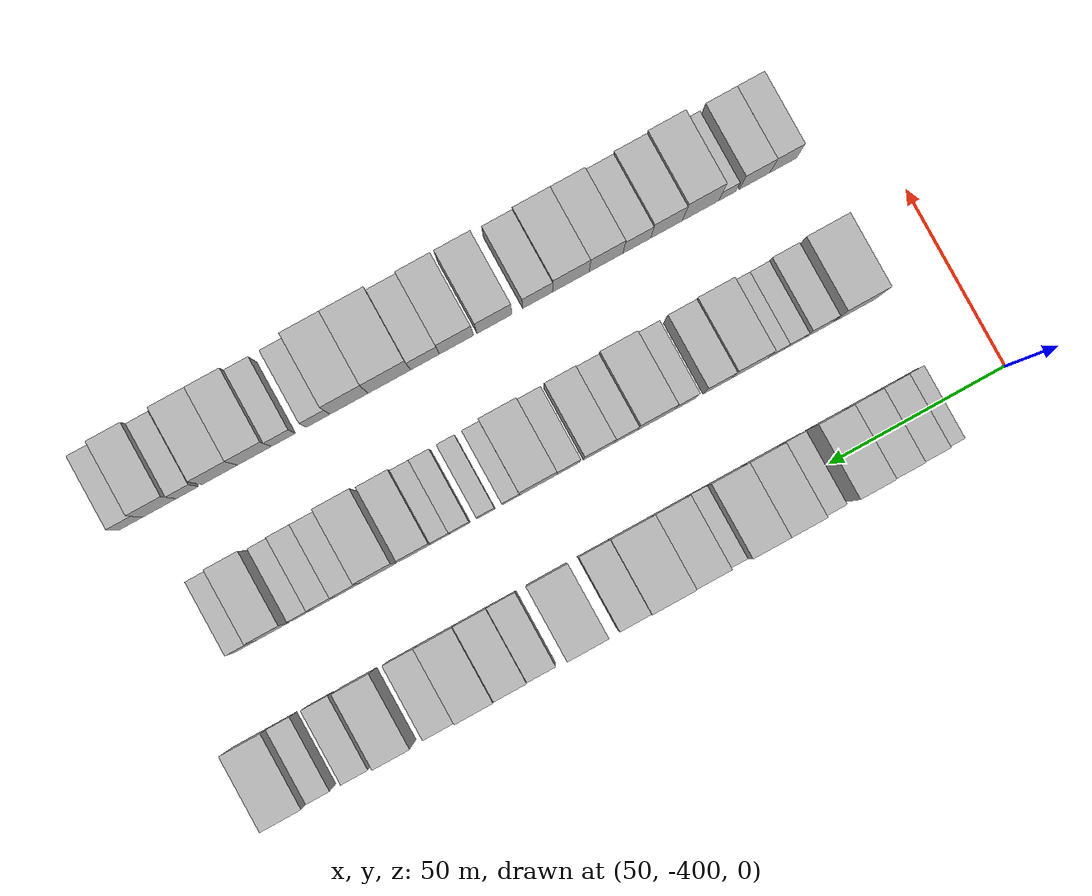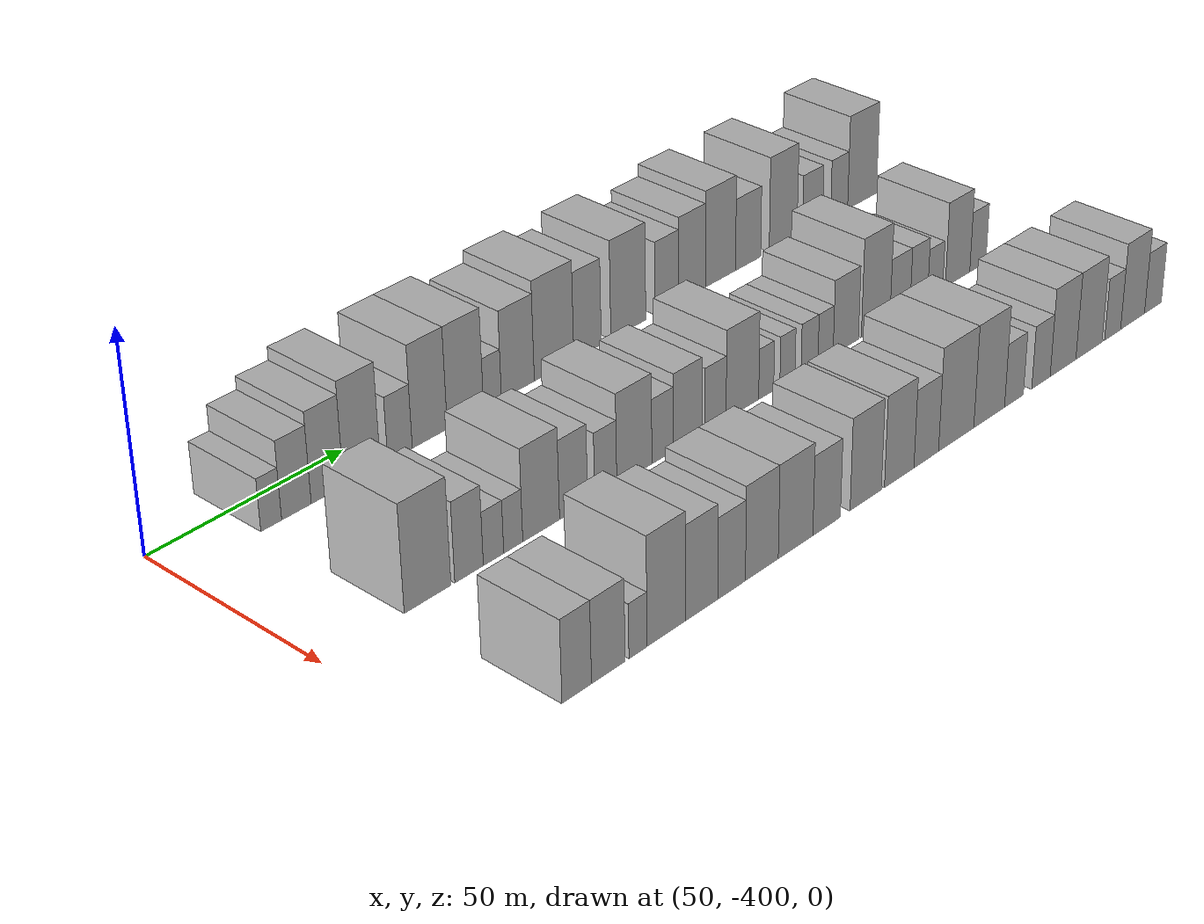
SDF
<sdf version="1.6">
 <world name="default">
  <model name="building_1">
   <static>1</static>
   <pose>50.0000 -377.3886 0 0.000000 0.000000 0.000000</pose>
   <link name="link">
    <pose>0 0 6.00 0 0 0</pose>
    <collision name="collision"><geometry><box><size>20.0000 5.2227 12.0000</size></box></geometry></collision>
    <visual name="visual">
     <cast_shadows>0</cast_shadows>
     <geometry><box><size>20.0000 5.2227 12.0000</size></box></geometry>
     <material>
      <script>
       <uri>model://HANNAS_wall/materials/scripts</uri>
       <uri>model://HANNAS_wall/materials/textures</uri>
       <name>vrc/HANNAS_wall</name>
      </script>
     </material>
    </visual>
   </link>
  </model>
  <model name="building_2">
   <static>1</static>
   <pose>50.0000 -371.0098 0 0.000000 0.000000 0.000000</pose>
   <link name="link">
    <pose>0 0 9.00 0 0 0</pose>
    <collision name="collision"><geometry><box><size>20.0000 7.5350 18.0000</size></box></geometry></collision>
    <visual name="visual">
     <cast_shadows>0</cast_shadows>
     <geometry><box><size>20.0000 7.5350 18.0000</size></box></geometry>
     <material>
      <script>
       <uri>model://HANNAS_wall/materials/scripts</uri>
       <uri>model://HANNAS_wall/materials/textures</uri>
       <name>vrc/HANNAS_wall</name>
      </script>
     </material>
    </visual>
   </link>
  </model>
  <model name="building_3">
   <static>1</static>
   <pose>50.0000 -363.0318 0 0.000000 0.000000 0.000000</pose>
   <link name="link">
    <pose>0 0 10.50 0 0 0</pose>
    <collision name="collision"><geometry><box><size>20.0000 8.4210 21.0000</size></box></geometry></collision>
    <visual name="visual">
     <cast_shadows>0</cast_shadows>
     <geometry><box><size>20.0000 8.4210 21.0000</size></box></geometry>
     <material>
      <script>
       <uri>model://HANNAS_wall/materials/scripts</uri>
       <uri>model://HANNAS_wall/materials/textures</uri>
       <name>vrc/HANNAS_wall</name>
      </script>
     </material>
    </visual>
   </link>
  </model>
  <model name="building_4">
   <static>1</static>
   <pose>50.0000 -353.9402 0 0.000000 0.000000 0.000000</pose>
   <link name="link">
    <pose>0 0 12.00 0 0 0</pose>
    <collision name="collision"><geometry><box><size>20.0000 9.7621 24.0000</size></box></geometry></collision>
    <visual name="visual">
     <cast_shadows>0</cast_shadows>
     <geometry><box><size>20.0000 9.7621 24.0000</size></box></geometry>
     <material>
      <script>
       <uri>model://HANNAS_wall/materials/scripts</uri>
       <uri>model://HANNAS_wall/materials/textures</uri>
       <name>vrc/HANNAS_wall</name>
      </script>
     </material>
    </visual>
   </link>
  </model>
  <model name="building_5">
   <static>1</static>
   <pose>50.0000 -343.7180 0 0.000000 0.000000 0.000000</pose>
   <link name="link">
    <pose>0 0 7.50 0 0 0</pose>
    <collision name="collision"><geometry><box><size>20.0000 6.6824 15.0000</size></box></geometry></collision>
    <visual name="visual">
     <cast_shadows>0</cast_shadows>
     <geometry><box><size>20.0000 6.6824 15.0000</size></box></geometry>
     <material>
      <script>
       <uri>model://HANNAS_wall/materials/scripts</uri>
       <uri>model://HANNAS_wall/materials/textures</uri>
       <name>vrc/HANNAS_wall</name>
      </script>
     </material>
    </visual>
   </link>
  </model>
  <model name="building_6">
   <static>1</static>
   <pose>50.0000 -335.5096 0 0.000000 0.000000 0.000000</pose>
   <link name="link">
    <pose>0 0 12.00 0 0 0</pose>
    <collision name="collision"><geometry><box><size>20.0000 9.7343 24.0000</size></box></geometry></collision>
    <visual name="visual">
     <cast_shadows>0</cast_shadows>
     <geometry><box><size>20.0000 9.7343 24.0000</size></box></geometry>
     <material>
      <script>
       <uri>model://HANNAS_wall/materials/scripts</uri>
       <uri>model://HANNAS_wall/materials/textures</uri>
       <name>vrc/HANNAS_wall</name>
      </script>
     </material>
    </visual>
   </link>
  </model>
  <model name="building_7">
   <static>1</static>
   <pose>50.0000 -325.4724 0 0.000000 0.000000 0.000000</pose>
   <link name="link">
    <pose>0 0 12.00 0 0 0</pose>
    <collision name="collision"><geometry><box><size>20.0000 10.3402 24.0000</size></box></geometry></collision>
    <visual name="visual">
     <cast_shadows>0</cast_shadows>
     <geometry><box><size>20.0000 10.3402 24.0000</size></box></geometry>
     <material>
      <script>
       <uri>model://HANNAS_wall/materials/scripts</uri>
       <uri>model://HANNAS_wall/materials/textures</uri>
       <name>vrc/HANNAS_wall</name>
      </script>
     </material>
    </visual>
   </link>
  </model>
  <model name="building_8">
   <static>1</static>
   <pose>50.0000 -317.7057 0 0.000000 0.000000 0.000000</pose>
   <link name="link">
    <pose>0 0 6.00 0 0 0</pose>
    <collision name="collision"><geometry><box><size>20.0000 5.1933 12.0000</size></box></geometry></collision>
    <visual name="visual">
     <cast_shadows>0</cast_shadows>
     <geometry><box><size>20.0000 5.1933 12.0000</size></box></geometry>
     <material>
      <script>
       <uri>model://HANNAS_wall/materials/scripts</uri>
       <uri>model://HANNAS_wall/materials/textures</uri>
       <name>vrc/HANNAS_wall</name>
      </script>
     </material>
    </visual>
   </link>
  </model>
  <model name="building_9">
   <static>1</static>
   <pose>50.0000 -310.2537 0 0.000000 0.000000 0.000000</pose>
   <link name="link">
    <pose>0 0 10.50 0 0 0</pose>
    <collision name="collision"><geometry><box><size>20.0000 9.7105 21.0000</size></box></geometry></collision>
    <visual name="visual">
     <cast_shadows>0</cast_shadows>
     <geometry><box><size>20.0000 9.7105 21.0000</size></box></geometry>
     <material>
      <script>
       <uri>model://HANNAS_wall/materials/scripts</uri>
       <uri>model://HANNAS_wall/materials/textures</uri>
       <name>vrc/HANNAS_wall</name>
      </script>
     </material>
    </visual>
   </link>
  </model>
  <model name="building_10">
   <static>1</static>
   <pose>50.0000 -299.4055 0 0.000000 0.000000 0.000000</pose>
   <link name="link">
    <pose>0 0 12.00 0 0 0</pose>
    <collision name="collision"><geometry><box><size>20.0000 11.9860 24.0000</size></box></geometry></collision>
    <visual name="visual">
     <cast_shadows>0</cast_shadows>
     <geometry><box><size>20.0000 11.9860 24.0000</size></box></geometry>
     <material>
      <script>
       <uri>model://HANNAS_wall/materials/scripts</uri>
       <uri>model://HANNAS_wall/materials/textures</uri>
       <name>vrc/HANNAS_wall</name>
      </script>
     </material>
    </visual>
   </link>
  </model>
  <model name="building_11">
   <static>1</static>
   <pose>50.0000 -289.1540 0 0.000000 0.000000 0.000000</pose>
   <link name="link">
    <pose>0 0 10.50 0 0 0</pose>
    <collision name="collision"><geometry><box><size>20.0000 8.5169 21.0000</size></box></geometry></collision>
    <visual name="visual">
     <cast_shadows>0</cast_shadows>
     <geometry><box><size>20.0000 8.5169 21.0000</size></box></geometry>
     <material>
      <script>
       <uri>model://HANNAS_wall/materials/scripts</uri>
       <uri>model://HANNAS_wall/materials/textures</uri>
       <name>vrc/HANNAS_wall</name>
      </script>
     </material>
    </visual>
   </link>
  </model>
  <model name="building_12">
   <static>1</static>
   <pose>50.0000 -276.3157 0 0.000000 0.000000 0.000000</pose>
   <link name="link">
    <pose>0 0 12.00 0 0 0</pose>
    <collision name="collision"><geometry><box><size>20.0000 11.1597 24.0000</size></box></geometry></collision>
    <visual name="visual">
     <cast_shadows>0</cast_shadows>
     <geometry><box><size>20.0000 11.1597 24.0000</size></box></geometry>
     <material>
      <script>
       <uri>model://HANNAS_wall/materials/scripts</uri>
       <uri>model://HANNAS_wall/materials/textures</uri>
       <name>vrc/HANNAS_wall</name>
      </script>
     </material>
    </visual>
   </link>
  </model>
  <model name="building_13">
   <static>1</static>
   <pose>50.0000 -263.8303 0 0.000000 0.000000 0.000000</pose>
   <link name="link">
    <pose>0 0 9.00 0 0 0</pose>
    <collision name="collision"><geometry><box><size>20.0000 7.8110 18.0000</size></box></geometry></collision>
    <visual name="visual">
     <cast_shadows>0</cast_shadows>
     <geometry><box><size>20.0000 7.8110 18.0000</size></box></geometry>
     <material>
      <script>
       <uri>model://HANNAS_wall/materials/scripts</uri>
       <uri>model://HANNAS_wall/materials/textures</uri>
       <name>vrc/HANNAS_wall</name>
      </script>
     </material>
    </visual>
   </link>
  </model>
  <model name="building_14">
   <static>1</static>
   <pose>50.0000 -255.4769 0 0.000000 0.000000 0.000000</pose>
   <link name="link">
    <pose>0 0 10.50 0 0 0</pose>
    <collision name="collision"><geometry><box><size>20.0000 8.8958 21.0000</size></box></geometry></collision>
    <visual name="visual">
     <cast_shadows>0</cast_shadows>
     <geometry><box><size>20.0000 8.8958 21.0000</size></box></geometry>
     <material>
      <script>
       <uri>model://HANNAS_wall/materials/scripts</uri>
       <uri>model://HANNAS_wall/materials/textures</uri>
       <name>vrc/HANNAS_wall</name>
      </script>
     </material>
    </visual>
   </link>
  </model>
  <model name="building_15">
   <static>1</static>
   <pose>50.0000 -245.8537 0 0.000000 0.000000 0.000000</pose>
   <link name="link">
    <pose>0 0 12.00 0 0 0</pose>
    <collision name="collision"><geometry><box><size>20.0000 10.3506 24.0000</size></box></geometry></collision>
    <visual name="visual">
     <cast_shadows>0</cast_shadows>
     <geometry><box><size>20.0000 10.3506 24.0000</size></box></geometry>
     <material>
      <script>
       <uri>model://HANNAS_wall/materials/scripts</uri>
       <uri>model://HANNAS_wall/materials/textures</uri>
       <name>vrc/HANNAS_wall</name>
      </script>
     </material>
    </visual>
   </link>
  </model>
  <model name="building_16">
   <static>1</static>
   <pose>50.0000 -236.2907 0 0.000000 0.000000 0.000000</pose>
   <link name="link">
    <pose>0 0 9.00 0 0 0</pose>
    <collision name="collision"><geometry><box><size>20.0000 8.7754 18.0000</size></box></geometry></collision>
    <visual name="visual">
     <cast_shadows>0</cast_shadows>
     <geometry><box><size>20.0000 8.7754 18.0000</size></box></geometry>
     <material>
      <script>
       <uri>model://HANNAS_wall/materials/scripts</uri>
       <uri>model://HANNAS_wall/materials/textures</uri>
       <name>vrc/HANNAS_wall</name>
      </script>
     </material>
    </visual>
   </link>
  </model>
  <model name="building_17">
   <static>1</static>
   <pose>50.0000 -223.9286 0 0.000000 0.000000 0.000000</pose>
   <link name="link">
    <pose>0 0 12.00 0 0 0</pose>
    <collision name="collision"><geometry><box><size>20.0000 9.9487 24.0000</size></box></geometry></collision>
    <visual name="visual">
     <cast_shadows>0</cast_shadows>
     <geometry><box><size>20.0000 9.9487 24.0000</size></box></geometry>
     <material>
      <script>
       <uri>model://HANNAS_wall/materials/scripts</uri>
       <uri>model://HANNAS_wall/materials/textures</uri>
       <name>vrc/HANNAS_wall</name>
      </script>
     </material>
    </visual>
   </link>
  </model>
  <model name="building_18">
   <static>1</static>
   <pose>50.0000 -213.2876 0 0.000000 0.000000 0.000000</pose>
   <link name="link">
    <pose>0 0 7.50 0 0 0</pose>
    <collision name="collision"><geometry><box><size>20.0000 7.3333 15.0000</size></box></geometry></collision>
    <visual name="visual">
     <cast_shadows>0</cast_shadows>
     <geometry><box><size>20.0000 7.3333 15.0000</size></box></geometry>
     <material>
      <script>
       <uri>model://HANNAS_wall/materials/scripts</uri>
       <uri>model://HANNAS_wall/materials/textures</uri>
       <name>vrc/HANNAS_wall</name>
      </script>
     </material>
    </visual>
   </link>
  </model>
  <model name="building_19">
   <static>1</static>
   <pose>50.0000 -203.4211 0 0.000000 0.000000 0.000000</pose>
   <link name="link">
    <pose>0 0 7.50 0 0 0</pose>
    <collision name="collision"><geometry><box><size>20.0000 6.3996 15.0000</size></box></geometry></collision>
    <visual name="visual">
     <cast_shadows>0</cast_shadows>
     <geometry><box><size>20.0000 6.3996 15.0000</size></box></geometry>
     <material>
      <script>
       <uri>model://HANNAS_wall/materials/scripts</uri>
       <uri>model://HANNAS_wall/materials/textures</uri>
       <name>vrc/HANNAS_wall</name>
      </script>
     </material>
    </visual>
   </link>
  </model>
  <model name="building_20">
   <static>1</static>
   <pose>50.0000 -194.7316 0 0.000000 0.000000 0.000000</pose>
   <link name="link">
    <pose>0 0 12.00 0 0 0</pose>
    <collision name="collision"><geometry><box><size>20.0000 10.9794 24.0000</size></box></geometry></collision>
    <visual name="visual">
     <cast_shadows>0</cast_shadows>
     <geometry><box><size>20.0000 10.9794 24.0000</size></box></geometry>
     <material>
      <script>
       <uri>model://HANNAS_wall/materials/scripts</uri>
       <uri>model://HANNAS_wall/materials/textures</uri>
       <name>vrc/HANNAS_wall</name>
      </script>
     </material>
    </visual>
   </link>
  </model>
  <model name="building_81">
   <static>1</static>
   <pose>90.0000 -374.0902 0 0.000000 0.000000 0.000000</pose>
   <link name="link">
    <pose>0 0 12.00 0 0 0</pose>
    <collision name="collision"><geometry><box><size>20.0000 11.8197 24.0000</size></box></geometry></collision>
    <visual name="visual">
     <cast_shadows>0</cast_shadows>
     <geometry><box><size>20.0000 11.8197 24.0000</size></box></geometry>
     <material>
      <script>
       <uri>model://HANNAS_wall/materials/scripts</uri>
       <uri>model://HANNAS_wall/materials/textures</uri>
       <name>vrc/HANNAS_wall</name>
      </script>
     </material>
    </visual>
   </link>
  </model>
  <model name="building_82">
   <static>1</static>
   <pose>90.0000 -363.4691 0 0.000000 0.000000 0.000000</pose>
   <link name="link">
    <pose>0 0 9.00 0 0 0</pose>
    <collision name="collision"><geometry><box><size>20.0000 7.4226 18.0000</size></box></geometry></collision>
    <visual name="visual">
     <cast_shadows>0</cast_shadows>
     <geometry><box><size>20.0000 7.4226 18.0000</size></box></geometry>
     <material>
      <script>
       <uri>model://HANNAS_wall/materials/scripts</uri>
       <uri>model://HANNAS_wall/materials/textures</uri>
       <name>vrc/HANNAS_wall</name>
      </script>
     </material>
    </visual>
   </link>
  </model>
  <model name="building_83">
   <static>1</static>
   <pose>90.0000 -357.0630 0 0.000000 0.000000 0.000000</pose>
   <link name="link">
    <pose>0 0 6.00 0 0 0</pose>
    <collision name="collision"><geometry><box><size>20.0000 5.3896 12.0000</size></box></geometry></collision>
    <visual name="visual">
     <cast_shadows>0</cast_shadows>
     <geometry><box><size>20.0000 5.3896 12.0000</size></box></geometry>
     <material>
      <script>
       <uri>model://HANNAS_wall/materials/scripts</uri>
       <uri>model://HANNAS_wall/materials/textures</uri>
       <name>vrc/HANNAS_wall</name>
      </script>
     </material>
    </visual>
   </link>
  </model>
  <model name="building_84">
   <static>1</static>
   <pose>90.0000 -351.8118 0 0.000000 0.000000 0.000000</pose>
   <link name="link">
    <pose>0 0 6.00 0 0 0</pose>
    <collision name="collision"><geometry><box><size>20.0000 5.1129 12.0000</size></box></geometry></collision>
    <visual name="visual">
     <cast_shadows>0</cast_shadows>
     <geometry><box><size>20.0000 5.1129 12.0000</size></box></geometry>
     <material>
      <script>
       <uri>model://HANNAS_wall/materials/scripts</uri>
       <uri>model://HANNAS_wall/materials/textures</uri>
       <name>vrc/HANNAS_wall</name>
      </script>
     </material>
    </visual>
   </link>
  </model>
  <model name="building_85">
   <static>1</static>
   <pose>90.0000 -344.2199 0 0.000000 0.000000 0.000000</pose>
   <link name="link">
    <pose>0 0 10.50 0 0 0</pose>
    <collision name="collision"><geometry><box><size>20.0000 10.0709 21.0000</size></box></geometry></collision>
    <visual name="visual">
     <cast_shadows>0</cast_shadows>
     <geometry><box><size>20.0000 10.0709 21.0000</size></box></geometry>
     <material>
      <script>
       <uri>model://HANNAS_wall/materials/scripts</uri>
       <uri>model://HANNAS_wall/materials/textures</uri>
       <name>vrc/HANNAS_wall</name>
      </script>
     </material>
    </visual>
   </link>
  </model>
  <model name="building_86">
   <static>1</static>
   <pose>90.0000 -335.2473 0 0.000000 0.000000 0.000000</pose>
   <link name="link">
    <pose>0 0 9.00 0 0 0</pose>
    <collision name="collision"><geometry><box><size>20.0000 7.8743 18.0000</size></box></geometry></collision>
    <visual name="visual">
     <cast_shadows>0</cast_shadows>
     <geometry><box><size>20.0000 7.8743 18.0000</size></box></geometry>
     <material>
      <script>
       <uri>model://HANNAS_wall/materials/scripts</uri>
       <uri>model://HANNAS_wall/materials/textures</uri>
       <name>vrc/HANNAS_wall</name>
      </script>
     </material>
    </visual>
   </link>
  </model>
  <model name="building_87">
   <static>1</static>
   <pose>90.0000 -326.1536 0 0.000000 0.000000 0.000000</pose>
   <link name="link">
    <pose>0 0 7.50 0 0 0</pose>
    <collision name="collision"><geometry><box><size>20.0000 6.3133 15.0000</size></box></geometry></collision>
    <visual name="visual">
     <cast_shadows>0</cast_shadows>
     <geometry><box><size>20.0000 6.3133 15.0000</size></box></geometry>
     <material>
      <script>
       <uri>model://HANNAS_wall/materials/scripts</uri>
       <uri>model://HANNAS_wall/materials/textures</uri>
       <name>vrc/HANNAS_wall</name>
      </script>
     </material>
    </visual>
   </link>
  </model>
  <model name="building_88">
   <static>1</static>
   <pose>90.0000 -317.8606 0 0.000000 0.000000 0.000000</pose>
   <link name="link">
    <pose>0 0 10.50 0 0 0</pose>
    <collision name="collision"><geometry><box><size>20.0000 10.2727 21.0000</size></box></geometry></collision>
    <visual name="visual">
     <cast_shadows>0</cast_shadows>
     <geometry><box><size>20.0000 10.2727 21.0000</size></box></geometry>
     <material>
      <script>
       <uri>model://HANNAS_wall/materials/scripts</uri>
       <uri>model://HANNAS_wall/materials/textures</uri>
       <name>vrc/HANNAS_wall</name>
      </script>
     </material>
    </visual>
   </link>
  </model>
  <model name="building_89">
   <static>1</static>
   <pose>90.0000 -309.4902 0 0.000000 0.000000 0.000000</pose>
   <link name="link">
    <pose>0 0 7.50 0 0 0</pose>
    <collision name="collision"><geometry><box><size>20.0000 6.4681 15.0000</size></box></geometry></collision>
    <visual name="visual">
     <cast_shadows>0</cast_shadows>
     <geometry><box><size>20.0000 6.4681 15.0000</size></box></geometry>
     <material>
      <script>
       <uri>model://HANNAS_wall/materials/scripts</uri>
       <uri>model://HANNAS_wall/materials/textures</uri>
       <name>vrc/HANNAS_wall</name>
      </script>
     </material>
    </visual>
   </link>
  </model>
  <model name="building_90">
   <static>1</static>
   <pose>90.0000 -301.9778 0 0.000000 0.000000 0.000000</pose>
   <link name="link">
    <pose>0 0 9.00 0 0 0</pose>
    <collision name="collision"><geometry><box><size>20.0000 8.5567 18.0000</size></box></geometry></collision>
    <visual name="visual">
     <cast_shadows>0</cast_shadows>
     <geometry><box><size>20.0000 8.5567 18.0000</size></box></geometry>
     <material>
      <script>
       <uri>model://HANNAS_wall/materials/scripts</uri>
       <uri>model://HANNAS_wall/materials/textures</uri>
       <name>vrc/HANNAS_wall</name>
      </script>
     </material>
    </visual>
   </link>
  </model>
  <model name="building_91">
   <static>1</static>
   <pose>90.0000 -293.4292 0 0.000000 0.000000 0.000000</pose>
   <link name="link">
    <pose>0 0 7.50 0 0 0</pose>
    <collision name="collision"><geometry><box><size>20.0000 6.5405 15.0000</size></box></geometry></collision>
    <visual name="visual">
     <cast_shadows>0</cast_shadows>
     <geometry><box><size>20.0000 6.5405 15.0000</size></box></geometry>
     <material>
      <script>
       <uri>model://HANNAS_wall/materials/scripts</uri>
       <uri>model://HANNAS_wall/materials/textures</uri>
       <name>vrc/HANNAS_wall</name>
      </script>
     </material>
    </visual>
   </link>
  </model>
  <model name="building_92">
   <static>1</static>
   <pose>90.0000 -285.0010 0 0.000000 0.000000 0.000000</pose>
   <link name="link">
    <pose>0 0 10.50 0 0 0</pose>
    <collision name="collision"><geometry><box><size>20.0000 10.3161 21.0000</size></box></geometry></collision>
    <visual name="visual">
     <cast_shadows>0</cast_shadows>
     <geometry><box><size>20.0000 10.3161 21.0000</size></box></geometry>
     <material>
      <script>
       <uri>model://HANNAS_wall/materials/scripts</uri>
       <uri>model://HANNAS_wall/materials/textures</uri>
       <name>vrc/HANNAS_wall</name>
      </script>
     </material>
    </visual>
   </link>
  </model>
  <model name="building_93">
   <static>1</static>
   <pose>90.0000 -277.4280 0 0.000000 0.000000 0.000000</pose>
   <link name="link">
    <pose>0 0 6.00 0 0 0</pose>
    <collision name="collision"><geometry><box><size>20.0000 4.8298 12.0000</size></box></geometry></collision>
    <visual name="visual">
     <cast_shadows>0</cast_shadows>
     <geometry><box><size>20.0000 4.8298 12.0000</size></box></geometry>
     <material>
      <script>
       <uri>model://HANNAS_wall/materials/scripts</uri>
       <uri>model://HANNAS_wall/materials/textures</uri>
       <name>vrc/HANNAS_wall</name>
      </script>
     </material>
    </visual>
   </link>
  </model>
  <model name="building_94">
   <static>1</static>
   <pose>90.0000 -270.5345 0 0.000000 0.000000 0.000000</pose>
   <link name="link">
    <pose>0 0 6.00 0 0 0</pose>
    <collision name="collision"><geometry><box><size>20.0000 4.9573 12.0000</size></box></geometry></collision>
    <visual name="visual">
     <cast_shadows>0</cast_shadows>
     <geometry><box><size>20.0000 4.9573 12.0000</size></box></geometry>
     <material>
      <script>
       <uri>model://HANNAS_wall/materials/scripts</uri>
       <uri>model://HANNAS_wall/materials/textures</uri>
       <name>vrc/HANNAS_wall</name>
      </script>
     </material>
    </visual>
   </link>
  </model>
  <model name="building_95">
   <static>1</static>
   <pose>90.0000 -263.2368 0 0.000000 0.000000 0.000000</pose>
   <link name="link">
    <pose>0 0 6.00 0 0 0</pose>
    <collision name="collision"><geometry><box><size>20.0000 5.6381 12.0000</size></box></geometry></collision>
    <visual name="visual">
     <cast_shadows>0</cast_shadows>
     <geometry><box><size>20.0000 5.6381 12.0000</size></box></geometry>
     <material>
      <script>
       <uri>model://HANNAS_wall/materials/scripts</uri>
       <uri>model://HANNAS_wall/materials/textures</uri>
       <name>vrc/HANNAS_wall</name>
      </script>
     </material>
    </visual>
   </link>
  </model>
  <model name="building_96">
   <static>1</static>
   <pose>90.0000 -257.8529 0 0.000000 0.000000 0.000000</pose>
   <link name="link">
    <pose>0 0 6.00 0 0 0</pose>
    <collision name="collision"><geometry><box><size>20.0000 5.1297 12.0000</size></box></geometry></collision>
    <visual name="visual">
     <cast_shadows>0</cast_shadows>
     <geometry><box><size>20.0000 5.1297 12.0000</size></box></geometry>
     <material>
      <script>
       <uri>model://HANNAS_wall/materials/scripts</uri>
       <uri>model://HANNAS_wall/materials/textures</uri>
       <name>vrc/HANNAS_wall</name>
      </script>
     </material>
    </visual>
   </link>
  </model>
  <model name="building_97">
   <static>1</static>
   <pose>90.0000 -250.9488 0 0.000000 0.000000 0.000000</pose>
   <link name="link">
    <pose>0 0 9.00 0 0 0</pose>
    <collision name="collision"><geometry><box><size>20.0000 8.6785 18.0000</size></box></geometry></collision>
    <visual name="visual">
     <cast_shadows>0</cast_shadows>
     <geometry><box><size>20.0000 8.6785 18.0000</size></box></geometry>
     <material>
      <script>
       <uri>model://HANNAS_wall/materials/scripts</uri>
       <uri>model://HANNAS_wall/materials/textures</uri>
       <name>vrc/HANNAS_wall</name>
      </script>
     </material>
    </visual>
   </link>
  </model>
  <model name="building_98">
   <static>1</static>
   <pose>90.0000 -240.5894 0 0.000000 0.000000 0.000000</pose>
   <link name="link">
    <pose>0 0 12.00 0 0 0</pose>
    <collision name="collision"><geometry><box><size>20.0000 10.0403 24.0000</size></box></geometry></collision>
    <visual name="visual">
     <cast_shadows>0</cast_shadows>
     <geometry><box><size>20.0000 10.0403 24.0000</size></box></geometry>
     <material>
      <script>
       <uri>model://HANNAS_wall/materials/scripts</uri>
       <uri>model://HANNAS_wall/materials/textures</uri>
       <name>vrc/HANNAS_wall</name>
      </script>
     </material>
    </visual>
   </link>
  </model>
  <model name="building_99">
   <static>1</static>
   <pose>90.0000 -231.9601 0 0.000000 0.000000 0.000000</pose>
   <link name="link">
    <pose>0 0 7.50 0 0 0</pose>
    <collision name="collision"><geometry><box><size>20.0000 7.2184 15.0000</size></box></geometry></collision>
    <visual name="visual">
     <cast_shadows>0</cast_shadows>
     <geometry><box><size>20.0000 7.2184 15.0000</size></box></geometry>
     <material>
      <script>
       <uri>model://HANNAS_wall/materials/scripts</uri>
       <uri>model://HANNAS_wall/materials/textures</uri>
       <name>vrc/HANNAS_wall</name>
      </script>
     </material>
    </visual>
   </link>
  </model>
  <model name="building_100">
   <static>1</static>
   <pose>90.0000 -225.1664 0 0.000000 0.000000 0.000000</pose>
   <link name="link">
    <pose>0 0 7.50 0 0 0</pose>
    <collision name="collision"><geometry><box><size>20.0000 6.3689 15.0000</size></box></geometry></collision>
    <visual name="visual">
     <cast_shadows>0</cast_shadows>
     <geometry><box><size>20.0000 6.3689 15.0000</size></box></geometry>
     <material>
      <script>
       <uri>model://HANNAS_wall/materials/scripts</uri>
       <uri>model://HANNAS_wall/materials/textures</uri>
       <name>vrc/HANNAS_wall</name>
      </script>
     </material>
    </visual>
   </link>
  </model>
  <model name="building_101">
   <static>1</static>
   <pose>90.0000 -219.2055 0 0.000000 0.000000 0.000000</pose>
   <link name="link">
    <pose>0 0 6.00 0 0 0</pose>
    <collision name="collision"><geometry><box><size>20.0000 5.5530 12.0000</size></box></geometry></collision>
    <visual name="visual">
     <cast_shadows>0</cast_shadows>
     <geometry><box><size>20.0000 5.5530 12.0000</size></box></geometry>
     <material>
      <script>
       <uri>model://HANNAS_wall/materials/scripts</uri>
       <uri>model://HANNAS_wall/materials/textures</uri>
       <name>vrc/HANNAS_wall</name>
      </script>
     </material>
    </visual>
   </link>
  </model>
  <model name="building_102">
   <static>1</static>
   <pose>90.0000 -210.8341 0 0.000000 0.000000 0.000000</pose>
   <link name="link">
    <pose>0 0 10.50 0 0 0</pose>
    <collision name="collision"><geometry><box><size>20.0000 9.1899 21.0000</size></box></geometry></collision>
    <visual name="visual">
     <cast_shadows>0</cast_shadows>
     <geometry><box><size>20.0000 9.1899 21.0000</size></box></geometry>
     <material>
      <script>
       <uri>model://HANNAS_wall/materials/scripts</uri>
       <uri>model://HANNAS_wall/materials/textures</uri>
       <name>vrc/HANNAS_wall</name>
      </script>
     </material>
    </visual>
   </link>
  </model>
  <model name="building_103">
   <static>1</static>
   <pose>90.0000 -203.1733 0 0.000000 0.000000 0.000000</pose>
   <link name="link">
    <pose>0 0 7.50 0 0 0</pose>
    <collision name="collision"><geometry><box><size>20.0000 6.1317 15.0000</size></box></geometry></collision>
    <visual name="visual">
     <cast_shadows>0</cast_shadows>
     <geometry><box><size>20.0000 6.1317 15.0000</size></box></geometry>
     <material>
      <script>
       <uri>model://HANNAS_wall/materials/scripts</uri>
       <uri>model://HANNAS_wall/materials/textures</uri>
       <name>vrc/HANNAS_wall</name>
      </script>
     </material>
    </visual>
   </link>
  </model>
  <model name="building_172">
   <static>1</static>
   <pose>130.0000 -376.2538 0 0.000000 0.000000 0.000000</pose>
   <link name="link">
    <pose>0 0 9.00 0 0 0</pose>
    <collision name="collision"><geometry><box><size>20.0000 7.4924 18.0000</size></box></geometry></collision>
    <visual name="visual">
     <cast_shadows>0</cast_shadows>
     <geometry><box><size>20.0000 7.4924 18.0000</size></box></geometry>
     <material>
      <script>
       <uri>model://HANNAS_wall/materials/scripts</uri>
       <uri>model://HANNAS_wall/materials/textures</uri>
       <name>vrc/HANNAS_wall</name>
      </script>
     </material>
    </visual>
   </link>
  </model>
  <model name="building_173">
   <static>1</static>
   <pose>130.0000 -368.1652 0 0.000000 0.000000 0.000000</pose>
   <link name="link">
    <pose>0 0 9.00 0 0 0</pose>
    <collision name="collision"><geometry><box><size>20.0000 8.6847 18.0000</size></box></geometry></collision>
    <visual name="visual">
     <cast_shadows>0</cast_shadows>
     <geometry><box><size>20.0000 8.6847 18.0000</size></box></geometry>
     <material>
      <script>
       <uri>model://HANNAS_wall/materials/scripts</uri>
       <uri>model://HANNAS_wall/materials/textures</uri>
       <name>vrc/HANNAS_wall</name>
      </script>
     </material>
    </visual>
   </link>
  </model>
  <model name="building_174">
   <static>1</static>
   <pose>130.0000 -360.4138 0 0.000000 0.000000 0.000000</pose>
   <link name="link">
    <pose>0 0 6.00 0 0 0</pose>
    <collision name="collision"><geometry><box><size>20.0000 4.8182 12.0000</size></box></geometry></collision>
    <visual name="visual">
     <cast_shadows>0</cast_shadows>
     <geometry><box><size>20.0000 4.8182 12.0000</size></box></geometry>
     <material>
      <script>
       <uri>model://HANNAS_wall/materials/scripts</uri>
       <uri>model://HANNAS_wall/materials/textures</uri>
       <name>vrc/HANNAS_wall</name>
      </script>
     </material>
    </visual>
   </link>
  </model>
  <model name="building_175">
   <static>1</static>
   <pose>130.0000 -352.8513 0 0.000000 0.000000 0.000000</pose>
   <link name="link">
    <pose>0 0 12.00 0 0 0</pose>
    <collision name="collision"><geometry><box><size>20.0000 10.3068 24.0000</size></box></geometry></collision>
    <visual name="visual">
     <cast_shadows>0</cast_shadows>
     <geometry><box><size>20.0000 10.3068 24.0000</size></box></geometry>
     <material>
      <script>
       <uri>model://HANNAS_wall/materials/scripts</uri>
       <uri>model://HANNAS_wall/materials/textures</uri>
       <name>vrc/HANNAS_wall</name>
      </script>
     </material>
    </visual>
   </link>
  </model>
  <model name="building_176">
   <static>1</static>
   <pose>130.0000 -343.2032 0 0.000000 0.000000 0.000000</pose>
   <link name="link">
    <pose>0 0 10.50 0 0 0</pose>
    <collision name="collision"><geometry><box><size>20.0000 8.9894 21.0000</size></box></geometry></collision>
    <visual name="visual">
     <cast_shadows>0</cast_shadows>
     <geometry><box><size>20.0000 8.9894 21.0000</size></box></geometry>
     <material>
      <script>
       <uri>model://HANNAS_wall/materials/scripts</uri>
       <uri>model://HANNAS_wall/materials/textures</uri>
       <name>vrc/HANNAS_wall</name>
      </script>
     </material>
    </visual>
   </link>
  </model>
  <model name="building_177">
   <static>1</static>
   <pose>130.0000 -334.7985 0 0.000000 0.000000 0.000000</pose>
   <link name="link">
    <pose>0 0 9.00 0 0 0</pose>
    <collision name="collision"><geometry><box><size>20.0000 7.8199 18.0000</size></box></geometry></collision>
    <visual name="visual">
     <cast_shadows>0</cast_shadows>
     <geometry><box><size>20.0000 7.8199 18.0000</size></box></geometry>
     <material>
      <script>
       <uri>model://HANNAS_wall/materials/scripts</uri>
       <uri>model://HANNAS_wall/materials/textures</uri>
       <name>vrc/HANNAS_wall</name>
      </script>
     </material>
    </visual>
   </link>
  </model>
  <model name="building_178">
   <static>1</static>
   <pose>130.0000 -326.1320 0 0.000000 0.000000 0.000000</pose>
   <link name="link">
    <pose>0 0 10.50 0 0 0</pose>
    <collision name="collision"><geometry><box><size>20.0000 9.5131 21.0000</size></box></geometry></collision>
    <visual name="visual">
     <cast_shadows>0</cast_shadows>
     <geometry><box><size>20.0000 9.5131 21.0000</size></box></geometry>
     <material>
      <script>
       <uri>model://HANNAS_wall/materials/scripts</uri>
       <uri>model://HANNAS_wall/materials/textures</uri>
       <name>vrc/HANNAS_wall</name>
      </script>
     </material>
    </visual>
   </link>
  </model>
  <model name="building_179">
   <static>1</static>
   <pose>130.0000 -316.2312 0 0.000000 0.000000 0.000000</pose>
   <link name="link">
    <pose>0 0 10.50 0 0 0</pose>
    <collision name="collision"><geometry><box><size>20.0000 10.2885 21.0000</size></box></geometry></collision>
    <visual name="visual">
     <cast_shadows>0</cast_shadows>
     <geometry><box><size>20.0000 10.2885 21.0000</size></box></geometry>
     <material>
      <script>
       <uri>model://HANNAS_wall/materials/scripts</uri>
       <uri>model://HANNAS_wall/materials/textures</uri>
       <name>vrc/HANNAS_wall</name>
      </script>
     </material>
    </visual>
   </link>
  </model>
  <model name="building_180">
   <static>1</static>
   <pose>130.0000 -306.8914 0 0.000000 0.000000 0.000000</pose>
   <link name="link">
    <pose>0 0 9.00 0 0 0</pose>
    <collision name="collision"><geometry><box><size>20.0000 8.3911 18.0000</size></box></geometry></collision>
    <visual name="visual">
     <cast_shadows>0</cast_shadows>
     <geometry><box><size>20.0000 8.3911 18.0000</size></box></geometry>
     <material>
      <script>
       <uri>model://HANNAS_wall/materials/scripts</uri>
       <uri>model://HANNAS_wall/materials/textures</uri>
       <name>vrc/HANNAS_wall</name>
      </script>
     </material>
    </visual>
   </link>
  </model>
  <model name="building_181">
   <static>1</static>
   <pose>130.0000 -294.7846 0 0.000000 0.000000 0.000000</pose>
   <link name="link">
    <pose>0 0 10.50 0 0 0</pose>
    <collision name="collision"><geometry><box><size>20.0000 9.8224 21.0000</size></box></geometry></collision>
    <visual name="visual">
     <cast_shadows>0</cast_shadows>
     <geometry><box><size>20.0000 9.8224 21.0000</size></box></geometry>
     <material>
      <script>
       <uri>model://HANNAS_wall/materials/scripts</uri>
       <uri>model://HANNAS_wall/materials/textures</uri>
       <name>vrc/HANNAS_wall</name>
      </script>
     </material>
    </visual>
   </link>
  </model>
  <model name="building_182">
   <static>1</static>
   <pose>130.0000 -284.1128 0 0.000000 0.000000 0.000000</pose>
   <link name="link">
    <pose>0 0 10.50 0 0 0</pose>
    <collision name="collision"><geometry><box><size>20.0000 9.5212 21.0000</size></box></geometry></collision>
    <visual name="visual">
     <cast_shadows>0</cast_shadows>
     <geometry><box><size>20.0000 9.5212 21.0000</size></box></geometry>
     <material>
      <script>
       <uri>model://HANNAS_wall/materials/scripts</uri>
       <uri>model://HANNAS_wall/materials/textures</uri>
       <name>vrc/HANNAS_wall</name>
      </script>
     </material>
    </visual>
   </link>
  </model>
  <model name="building_183">
   <static>1</static>
   <pose>130.0000 -275.2955 0 0.000000 0.000000 0.000000</pose>
   <link name="link">
    <pose>0 0 9.00 0 0 0</pose>
    <collision name="collision"><geometry><box><size>20.0000 8.1135 18.0000</size></box></geometry></collision>
    <visual name="visual">
     <cast_shadows>0</cast_shadows>
     <geometry><box><size>20.0000 8.1135 18.0000</size></box></geometry>
     <material>
      <script>
       <uri>model://HANNAS_wall/materials/scripts</uri>
       <uri>model://HANNAS_wall/materials/textures</uri>
       <name>vrc/HANNAS_wall</name>
      </script>
     </material>
    </visual>
   </link>
  </model>
  <model name="building_184">
   <static>1</static>
   <pose>130.0000 -265.2795 0 0.000000 0.000000 0.000000</pose>
   <link name="link">
    <pose>0 0 12.00 0 0 0</pose>
    <collision name="collision"><geometry><box><size>20.0000 11.9183 24.0000</size></box></geometry></collision>
    <visual name="visual">
     <cast_shadows>0</cast_shadows>
     <geometry><box><size>20.0000 11.9183 24.0000</size></box></geometry>
     <material>
      <script>
       <uri>model://HANNAS_wall/materials/scripts</uri>
       <uri>model://HANNAS_wall/materials/textures</uri>
       <name>vrc/HANNAS_wall</name>
      </script>
     </material>
    </visual>
   </link>
  </model>
  <model name="building_185">
   <static>1</static>
   <pose>130.0000 -253.9694 0 0.000000 0.000000 0.000000</pose>
   <link name="link">
    <pose>0 0 12.00 0 0 0</pose>
    <collision name="collision"><geometry><box><size>20.0000 10.7020 24.0000</size></box></geometry></collision>
    <visual name="visual">
     <cast_shadows>0</cast_shadows>
     <geometry><box><size>20.0000 10.7020 24.0000</size></box></geometry>
     <material>
      <script>
       <uri>model://HANNAS_wall/materials/scripts</uri>
       <uri>model://HANNAS_wall/materials/textures</uri>
       <name>vrc/HANNAS_wall</name>
      </script>
     </material>
    </visual>
   </link>
  </model>
  <model name="building_186">
   <static>1</static>
   <pose>130.0000 -245.2798 0 0.000000 0.000000 0.000000</pose>
   <link name="link">
    <pose>0 0 7.50 0 0 0</pose>
    <collision name="collision"><geometry><box><size>20.0000 6.6770 15.0000</size></box></geometry></collision>
    <visual name="visual">
     <cast_shadows>0</cast_shadows>
     <geometry><box><size>20.0000 6.6770 15.0000</size></box></geometry>
     <material>
      <script>
       <uri>model://HANNAS_wall/materials/scripts</uri>
       <uri>model://HANNAS_wall/materials/textures</uri>
       <name>vrc/HANNAS_wall</name>
      </script>
     </material>
    </visual>
   </link>
  </model>
  <model name="building_187">
   <static>1</static>
   <pose>130.0000 -235.5930 0 0.000000 0.000000 0.000000</pose>
   <link name="link">
    <pose>0 0 7.50 0 0 0</pose>
    <collision name="collision"><geometry><box><size>20.0000 6.6967 15.0000</size></box></geometry></collision>
    <visual name="visual">
     <cast_shadows>0</cast_shadows>
     <geometry><box><size>20.0000 6.6967 15.0000</size></box></geometry>
     <material>
      <script>
       <uri>model://HANNAS_wall/materials/scripts</uri>
       <uri>model://HANNAS_wall/materials/textures</uri>
       <name>vrc/HANNAS_wall</name>
      </script>
     </material>
    </visual>
   </link>
  </model>
  <model name="building_188">
   <static>1</static>
   <pose>130.0000 -227.4922 0 0.000000 0.000000 0.000000</pose>
   <link name="link">
    <pose>0 0 10.50 0 0 0</pose>
    <collision name="collision"><geometry><box><size>20.0000 9.5048 21.0000</size></box></geometry></collision>
    <visual name="visual">
     <cast_shadows>0</cast_shadows>
     <geometry><box><size>20.0000 9.5048 21.0000</size></box></geometry>
     <material>
      <script>
       <uri>model://HANNAS_wall/materials/scripts</uri>
       <uri>model://HANNAS_wall/materials/textures</uri>
       <name>vrc/HANNAS_wall</name>
      </script>
     </material>
    </visual>
   </link>
  </model>
  <model name="building_189">
   <static>1</static>
   <pose>130.0000 -217.7890 0 0.000000 0.000000 0.000000</pose>
   <link name="link">
    <pose>0 0 10.50 0 0 0</pose>
    <collision name="collision"><geometry><box><size>20.0000 9.9017 21.0000</size></box></geometry></collision>
    <visual name="visual">
     <cast_shadows>0</cast_shadows>
     <geometry><box><size>20.0000 9.9017 21.0000</size></box></geometry>
     <material>
      <script>
       <uri>model://HANNAS_wall/materials/scripts</uri>
       <uri>model://HANNAS_wall/materials/textures</uri>
       <name>vrc/HANNAS_wall</name>
      </script>
     </material>
    </visual>
   </link>
  </model>
  <model name="building_190">
   <static>1</static>
   <pose>130.0000 -208.7566 0 0.000000 0.000000 0.000000</pose>
   <link name="link">
    <pose>0 0 7.50 0 0 0</pose>
    <collision name="collision"><geometry><box><size>20.0000 6.1632 15.0000</size></box></geometry></collision>
    <visual name="visual">
     <cast_shadows>0</cast_shadows>
     <geometry><box><size>20.0000 6.1632 15.0000</size></box></geometry>
     <material>
      <script>
       <uri>model://HANNAS_wall/materials/scripts</uri>
       <uri>model://HANNAS_wall/materials/textures</uri>
       <name>vrc/HANNAS_wall</name>
      </script>
     </material>
    </visual>
   </link>
  </model>
  <model name="building_191">
   <static>1</static>
   <pose>130.0000 -200.9824 0 0.000000 0.000000 0.000000</pose>
   <link name="link">
    <pose>0 0 10.50 0 0 0</pose>
    <collision name="collision"><geometry><box><size>20.0000 9.3852 21.0000</size></box></geometry></collision>
    <visual name="visual">
     <cast_shadows>0</cast_shadows>
     <geometry><box><size>20.0000 9.3852 21.0000</size></box></geometry>
     <material>
      <script>
       <uri>model://HANNAS_wall/materials/scripts</uri>
       <uri>model://HANNAS_wall/materials/textures</uri>
       <name>vrc/HANNAS_wall</name>
      </script>
     </material>
    </visual>
   </link>
  </model>
  <model name="building_192">
   <static>1</static>
   <pose>130.0000 -192.9304 0 0.000000 0.000000 0.000000</pose>
   <link name="link">
    <pose>0 0 7.50 0 0 0</pose>
    <collision name="collision"><geometry><box><size>20.0000 6.7187 15.0000</size></box></geometry></collision>
    <visual name="visual">
     <cast_shadows>0</cast_shadows>
     <geometry><box><size>20.0000 6.7187 15.0000</size></box></geometry>
     <material>
      <script>
       <uri>model://HANNAS_wall/materials/scripts</uri>
       <uri>model://HANNAS_wall/materials/textures</uri>
       <name>vrc/HANNAS_wall</name>
      </script>
     </material>
    </visual>
   </link>
  </model>
 </world>
</sdf>
